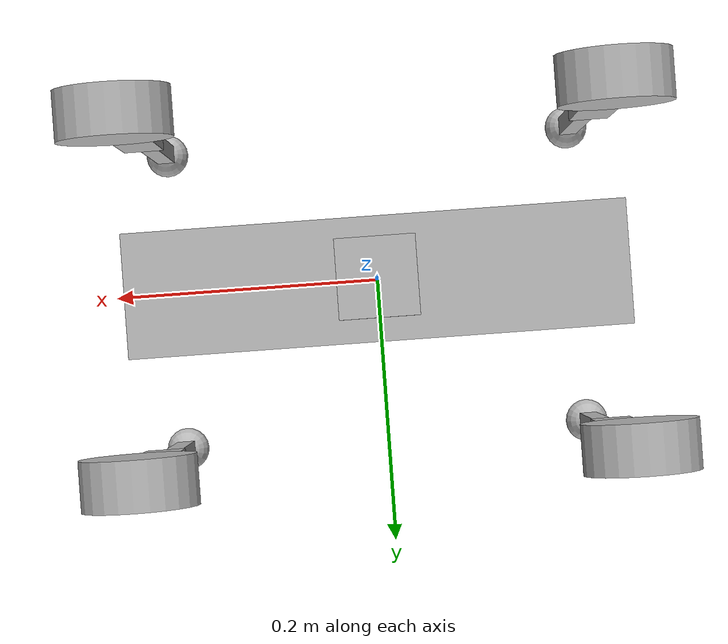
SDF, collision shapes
<sdf version='1.6'>
  <model name='go2'>
    <link name='base'>
      <pose frame=''>0 0 0 0 -0 0</pose>
      <inertial>
        <pose frame=''>0.020317 0 -0.00156 0 -0 0</pose>
        <mass>7.192</mass>
        <inertia>
          <ixx>0.0275133</ixx>
          <ixy>0.00012166</ixy>
          <ixz>0.00204105</ixz>
          <iyy>0.101227</iyy>
          <iyz>-3.12e-05</iyz>
          <izz>0.107378</izz>
        </inertia>
      </inertial>
      <collision name='base_fixed_joint_lump__trunk_collision'>
        <pose frame=''>0 0 0 0 -0 0</pose>
        <geometry>
          <box>
            <size>0.3762 0.0935 0.114</size>
          </box>
        </geometry>
        <surface>
          <contact>
            <ode>
              <kp>1e+06</kp>
              <kd>1</kd>
            </ode>
          </contact>
          <friction>
            <ode>
              <mu>0.2</mu>
              <mu2>0.2</mu2>
            </ode>
          </friction>
        </surface>
      </collision>
      <collision name='base_fixed_joint_lump__hokuyo_frame_collision_1'>
        <pose frame=''>0 0 0.0845 0 -0 0</pose>
        <geometry>
          <box>
            <size>0.058 0.058 0.087</size>
          </box>
        </geometry>
        <surface>
          <contact>
            <ode/>
          </contact>
          <friction>
            <ode/>
          </friction>
        </surface>
      </collision>
      <collision name='base_fixed_joint_lump__imu_link_collision_2'>
        <pose frame=''>0 0 0 0 -0 0</pose>
        <geometry>
          <box>
            <size>0.001 0.001 0.001</size>
          </box>
        </geometry>
        <surface>
          <contact>
            <ode/>
          </contact>
          <friction>
            <ode>
              <mu>0.2</mu>
              <mu2>0.2</mu2>
            </ode>
          </friction>
        </surface>
      </collision>
      <visual name='base_visual'>
        <pose frame=''>0 0 0 0 -0 0</pose>
        <geometry>
          <box>
            <size>0.001 0.001 0.001</size>
          </box>
        </geometry>
        <material>
          <script>
            <uri>__default__</uri>
            <name>__default__</name>
          </script>
        </material>
      </visual>
      <visual name='base_fixed_joint_lump__trunk_visual_1'>
        <pose frame=''>0 0 0 0 -0 0</pose>
        <geometry>
          <mesh>
            <scale>1 1 1</scale>
            <uri>model://go2_description/meshes/trunk.dae</uri>
          </mesh>
        </geometry>
        <material>
          <script>
            <uri>__default__</uri>
            <name>__default__</name>
          </script>
        </material>
      </visual>
      <visual name='base_fixed_joint_lump__hokuyo_frame_visual_2'>
        <pose frame=''>0 0 0.096 0 -0 0</pose>
        <geometry>
          <mesh>
            <scale>1 1 1</scale>
            <uri>model://hector_sensors_description/meshes/hokuyo_utm30lx/hokuyo_utm_30lx.dae</uri>
          </mesh>
        </geometry>
        <material>
          <script>
            <uri>__default__</uri>
            <name>__default__</name>
          </script>
        </material>
      </visual>
      <visual name='base_fixed_joint_lump__imu_link_visual_3'>
        <pose frame=''>0 0 0 0 -0 0</pose>
        <geometry>
          <box>
            <size>0.001 0.001 0.001</size>
          </box>
        </geometry>
        <material>
          <script>
            <uri>__default__</uri>
            <name>__default__</name>
          </script>
        </material>
      </visual>
      <velocity_decay/>
      <velocity_decay/>
      <velocity_decay/>
      <sensor name='hokuyo' type='ray'>
        <always_on>1</always_on>
        <update_rate>30</update_rate>
        <visualize>0</visualize>
        <ray>
          <scan>
            <horizontal>
              <samples>1040</samples>
              <resolution>1</resolution>
              <min_angle>2.26893</min_angle>
              <max_angle>-2.26893</max_angle>
            </horizontal>
          </scan>
          <range>
            <min>0.2</min>
            <max>30</max>
            <resolution>0.01</resolution>
          </range>
          <noise>
            <type>gaussian</type>
            <mean>0</mean>
            <stddev>0.004</stddev>
          </noise>
        </ray>
        <plugin name='gazebo_ros_hokuyo_controller' filename='libgazebo_ros_laser.so'>
          <topicName>scan</topicName>
          <frameName>hokuyo_frame</frameName>
        </plugin>
        <pose frame=''>0 0 0.096 0 -0 0</pose>
      </sensor>
      <velocity_decay/>
      <gravity>1</gravity>
      <sensor name='imu_sensor' type='imu'>
        <always_on>1</always_on>
        <update_rate>1000</update_rate>
        <visualize>1</visualize>
        <topic>__default_topic__</topic>
        <plugin name='imu_plugin' filename='libgazebo_ros_imu_sensor.so'>
          <topicName>trunk_imu</topicName>
          <bodyName>imu_link</bodyName>
          <updateRateHZ>1000.0</updateRateHZ>
          <gaussianNoise>0.0</gaussianNoise>
          <xyzOffset>0 0 0</xyzOffset>
          <rpyOffset>0 0 0</rpyOffset>
          <frameName>imu_link</frameName>
        </plugin>
        <pose frame=''>0 0 0 0 -0 0</pose>
      </sensor>
      <gravity>1</gravity>
      <velocity_decay/>
    </link>
    <link name='FL_hip'>
      <pose frame=''>0.1934 0.0465 0 0 -0 0</pose>
      <inertial>
        <pose frame=''>-0.0054 0.00194 -0.000105 0 -0 0</pose>
        <mass>0.678</mass>
        <inertia>
          <ixx>0.00048</ixx>
          <ixy>-3.01e-06</ixy>
          <ixz>1.11e-06</ixz>
          <iyy>0.000884</iyy>
          <iyz>-1.42e-06</iyz>
          <izz>0.000596</izz>
        </inertia>
      </inertial>
      <collision name='FL_hip_collision'>
        <pose frame=''>0 0.0955 0 1.5708 -0 0</pose>
        <geometry>
          <cylinder>
            <length>0.04</length>
            <radius>0.046</radius>
          </cylinder>
        </geometry>
        <surface>
          <contact>
            <ode/>
          </contact>
          <friction>
            <ode>
              <mu>0.2</mu>
              <mu2>0.2</mu2>
            </ode>
          </friction>
        </surface>
      </collision>
      <visual name='FL_hip_visual'>
        <pose frame=''>0 0 0 0 -0 0</pose>
        <geometry>
          <mesh>
            <scale>1 1 1</scale>
            <uri>model://go2_description/meshes/hip.dae</uri>
          </mesh>
        </geometry>
        <material>
          <script>
            <uri>__default__</uri>
            <name>__default__</name>
          </script>
        </material>
      </visual>
      <gravity>1</gravity>
      <velocity_decay/>
    </link>
    <joint name='FL_hip_joint' type='revolute'>
      <child>FL_hip</child>
      <parent>base</parent>
      <axis>
        <xyz>1 0 0</xyz>
        <limit>
          <lower>-1.0472</lower>
          <upper>1.0472</upper>
          <effort>23.7</effort>
          <velocity>30.1</velocity>
        </limit>
        <dynamics>
          <damping>0.01</damping>
          <friction>0.2</friction>
          <spring_reference>0</spring_reference>
          <spring_stiffness>0</spring_stiffness>
        </dynamics>
        <use_parent_model_frame>1</use_parent_model_frame>
      </axis>
    </joint>
    <link name='FL_thigh'>
      <pose frame=''>0.1934 0.142 0 0 -0 0</pose>
      <inertial>
        <pose frame=''>-0.00374 -0.0223 -0.0327 0 -0 0</pose>
        <mass>1.152</mass>
        <inertia>
          <ixx>0.00584</ixx>
          <ixy>8.72e-05</ixy>
          <ixz>-0.000289</ixz>
          <iyy>0.0058</iyy>
          <iyz>0.000808</iyz>
          <izz>0.00103</izz>
        </inertia>
      </inertial>
      <collision name='FL_thigh_collision'>
        <pose frame=''>0 0 -0.1065 3.14159 1.57079 3.14159</pose>
        <geometry>
          <box>
            <size>0.213 0.0245 0.034</size>
          </box>
        </geometry>
        <surface>
          <contact>
            <ode>
              <kp>1e+06</kp>
              <kd>1</kd>
            </ode>
          </contact>
          <friction>
            <ode>
              <mu>0.2</mu>
              <mu2>0.2</mu2>
            </ode>
          </friction>
        </surface>
      </collision>
      <visual name='FL_thigh_visual'>
        <pose frame=''>0 0 0 0 -0 0</pose>
        <geometry>
          <mesh>
            <scale>1 1 1</scale>
            <uri>model://go2_description/meshes/thigh.dae</uri>
          </mesh>
        </geometry>
        <material>
          <script>
            <uri>__default__</uri>
            <name>__default__</name>
          </script>
        </material>
      </visual>
      <gravity>1</gravity>
      <velocity_decay/>
      <self_collide>1</self_collide>
    </link>
    <joint name='FL_thigh_joint' type='revolute'>
      <child>FL_thigh</child>
      <parent>FL_hip</parent>
      <axis>
        <xyz>0 1 0</xyz>
        <limit>
          <lower>-1.5708</lower>
          <upper>3.4907</upper>
          <effort>23.7</effort>
          <velocity>30.1</velocity>
        </limit>
        <dynamics>
          <damping>0.01</damping>
          <friction>0.2</friction>
          <spring_reference>0</spring_reference>
          <spring_stiffness>0</spring_stiffness>
        </dynamics>
        <use_parent_model_frame>1</use_parent_model_frame>
      </axis>
    </joint>
    <link name='FL_calf'>
      <pose frame=''>0.1934 0.142 -0.213 0 -0 0</pose>
      <inertial>
        <pose frame=''>0.003944 -0.000702 -0.142477 0 -0 0</pose>
        <mass>0.214</mass>
        <inertia>
          <ixx>0.00150432</ixx>
          <ixy>5.70698e-07</ixy>
          <ixz>-5.98808e-06</ixz>
          <iyy>0.00152557</iyy>
          <iyz>1.24056e-05</iyz>
          <izz>4.38377e-05</izz>
        </inertia>
      </inertial>
      <collision name='FL_calf_collision'>
        <pose frame=''>0 0 -0.1065 3.14159 1.57079 3.14159</pose>
        <geometry>
          <box>
            <size>0.213 0.016 0.016</size>
          </box>
        </geometry>
        <surface>
          <contact>
            <ode/>
          </contact>
          <friction>
            <ode>
              <mu>0.2</mu>
              <mu2>0.2</mu2>
            </ode>
          </friction>
        </surface>
      </collision>
      <collision name='FL_calf_fixed_joint_lump__FL_foot_collision_1'>
        <pose frame=''>0 0 -0.213 0 -0 0</pose>
        <geometry>
          <sphere>
            <radius>0.02</radius>
          </sphere>
        </geometry>
        <surface>
          <contact>
            <ode>
              <kp>1e+06</kp>
              <kd>1</kd>
            </ode>
          </contact>
          <friction>
            <ode>
              <mu>0.6</mu>
              <mu2>0.6</mu2>
            </ode>
          </friction>
        </surface>
      </collision>
      <visual name='FL_calf_visual'>
        <pose frame=''>0 0 0 0 -0 0</pose>
        <geometry>
          <mesh>
            <scale>1 1 1</scale>
            <uri>model://go2_description/meshes/calf.dae</uri>
          </mesh>
        </geometry>
        <material>
          <script>
            <uri>__default__</uri>
            <name>__default__</name>
          </script>
        </material>
      </visual>
      <visual name='FL_calf_fixed_joint_lump__FL_foot_visual_1'>
        <pose frame=''>0 0 -0.213 0 -0 0</pose>
        <geometry>
          <sphere>
            <radius>0.01</radius>
          </sphere>
        </geometry>
        <plugin name='drawForcePlugin' filename='libunitreeDrawForcePlugin.so'>
          <topicName>FL_foot_contact</topicName>
        </plugin>
        <material>
          <script>
            <uri>__default__</uri>
            <name>__default__</name>
          </script>
        </material>
      </visual>
      <velocity_decay/>
      <sensor name='FL_foot_contact' type='contact'>
        <update_rate>100</update_rate>
        <plugin name='contactPlugin' filename='libunitreeFootContactPlugin.so'/>
        <contact>
          <collision>FL_calf_fixed_joint_lump__FL_foot_collision_1</collision>
          <topic>__default_topic__</topic>
        </contact>
      </sensor>
      <velocity_decay/>
      <self_collide>1</self_collide>
      <velocity_decay/>
      <gravity>1</gravity>
      <velocity_decay/>
      <self_collide>1</self_collide>
    </link>
    <joint name='FL_calf_joint' type='revolute'>
      <child>FL_calf</child>
      <parent>FL_thigh</parent>
      <axis>
        <xyz>0 1 0</xyz>
        <limit>
          <lower>-2.7227</lower>
          <upper>-0.83776</upper>
          <effort>35.55</effort>
          <velocity>20.06</velocity>
        </limit>
        <dynamics>
          <damping>0.01</damping>
          <friction>0.2</friction>
          <spring_reference>0</spring_reference>
          <spring_stiffness>0</spring_stiffness>
        </dynamics>
        <use_parent_model_frame>1</use_parent_model_frame>
      </axis>
    </joint>
    <link name='FR_hip'>
      <pose frame=''>0.1934 -0.0465 0 0 -0 0</pose>
      <inertial>
        <pose frame=''>-0.0054 -0.00194 -0.000105 0 -0 0</pose>
        <mass>0.678</mass>
        <inertia>
          <ixx>0.00048</ixx>
          <ixy>3.01e-06</ixy>
          <ixz>1.11e-06</ixz>
          <iyy>0.000884</iyy>
          <iyz>1.42e-06</iyz>
          <izz>0.000596</izz>
        </inertia>
      </inertial>
      <collision name='FR_hip_collision'>
        <pose frame=''>0 -0.0955 0 1.5708 -0 0</pose>
        <geometry>
          <cylinder>
            <length>0.04</length>
            <radius>0.046</radius>
          </cylinder>
        </geometry>
        <surface>
          <contact>
            <ode/>
          </contact>
          <friction>
            <ode>
              <mu>0.2</mu>
              <mu2>0.2</mu2>
            </ode>
          </friction>
        </surface>
      </collision>
      <visual name='FR_hip_visual'>
        <pose frame=''>0 0 0 3.14159 -0 0</pose>
        <geometry>
          <mesh>
            <scale>1 1 1</scale>
            <uri>model://go2_description/meshes/hip.dae</uri>
          </mesh>
        </geometry>
        <material>
          <script>
            <uri>__default__</uri>
            <name>__default__</name>
          </script>
        </material>
      </visual>
      <gravity>1</gravity>
      <velocity_decay/>
    </link>
    <joint name='FR_hip_joint' type='revolute'>
      <child>FR_hip</child>
      <parent>base</parent>
      <axis>
        <xyz>1 0 0</xyz>
        <limit>
          <lower>-1.0472</lower>
          <upper>1.0472</upper>
          <effort>23.7</effort>
          <velocity>30.1</velocity>
        </limit>
        <dynamics>
          <damping>0.01</damping>
          <friction>0.2</friction>
          <spring_reference>0</spring_reference>
          <spring_stiffness>0</spring_stiffness>
        </dynamics>
        <use_parent_model_frame>1</use_parent_model_frame>
      </axis>
    </joint>
    <link name='FR_thigh'>
      <pose frame=''>0.1934 -0.142 0 0 -0 0</pose>
      <inertial>
        <pose frame=''>-0.00374 0.0223 -0.0327 0 -0 0</pose>
        <mass>1.152</mass>
        <inertia>
          <ixx>0.00584</ixx>
          <ixy>-8.72e-05</ixy>
          <ixz>-0.000289</ixz>
          <iyy>0.0058</iyy>
          <iyz>-0.000808</iyz>
          <izz>0.00103</izz>
        </inertia>
      </inertial>
      <collision name='FR_thigh_collision'>
        <pose frame=''>0 0 -0.1065 3.14159 1.57079 3.14159</pose>
        <geometry>
          <box>
            <size>0.213 0.0245 0.034</size>
          </box>
        </geometry>
        <surface>
          <contact>
            <ode>
              <kp>1e+06</kp>
              <kd>1</kd>
            </ode>
          </contact>
          <friction>
            <ode>
              <mu>0.2</mu>
              <mu2>0.2</mu2>
            </ode>
          </friction>
        </surface>
      </collision>
      <visual name='FR_thigh_visual'>
        <pose frame=''>0 0 0 0 -0 0</pose>
        <geometry>
          <mesh>
            <scale>1 1 1</scale>
            <uri>model://go2_description/meshes/thigh_mirror.dae</uri>
          </mesh>
        </geometry>
        <material>
          <script>
            <uri>__default__</uri>
            <name>__default__</name>
          </script>
        </material>
      </visual>
      <gravity>1</gravity>
      <velocity_decay/>
      <self_collide>1</self_collide>
    </link>
    <joint name='FR_thigh_joint' type='revolute'>
      <child>FR_thigh</child>
      <parent>FR_hip</parent>
      <axis>
        <xyz>0 1 0</xyz>
        <limit>
          <lower>-1.5708</lower>
          <upper>3.4907</upper>
          <effort>23.7</effort>
          <velocity>30.1</velocity>
        </limit>
        <dynamics>
          <damping>0.01</damping>
          <friction>0.2</friction>
          <spring_reference>0</spring_reference>
          <spring_stiffness>0</spring_stiffness>
        </dynamics>
        <use_parent_model_frame>1</use_parent_model_frame>
      </axis>
    </joint>
    <link name='FR_calf'>
      <pose frame=''>0.1934 -0.142 -0.213 0 -0 0</pose>
      <inertial>
        <pose frame=''>0.003944 -0.000702 -0.142477 0 -0 0</pose>
        <mass>0.214</mass>
        <inertia>
          <ixx>0.00150432</ixx>
          <ixy>5.70698e-07</ixy>
          <ixz>-5.98808e-06</ixz>
          <iyy>0.00152557</iyy>
          <iyz>1.24056e-05</iyz>
          <izz>4.38377e-05</izz>
        </inertia>
      </inertial>
      <collision name='FR_calf_collision'>
        <pose frame=''>0 0 -0.1065 3.14159 1.57079 3.14159</pose>
        <geometry>
          <box>
            <size>0.213 0.016 0.016</size>
          </box>
        </geometry>
        <surface>
          <contact>
            <ode/>
          </contact>
          <friction>
            <ode>
              <mu>0.2</mu>
              <mu2>0.2</mu2>
            </ode>
          </friction>
        </surface>
      </collision>
      <collision name='FR_calf_fixed_joint_lump__FR_foot_collision_1'>
        <pose frame=''>0 0 -0.213 0 -0 0</pose>
        <geometry>
          <sphere>
            <radius>0.02</radius>
          </sphere>
        </geometry>
        <surface>
          <contact>
            <ode>
              <kp>1e+06</kp>
              <kd>1</kd>
            </ode>
          </contact>
          <friction>
            <ode>
              <mu>0.6</mu>
              <mu2>0.6</mu2>
            </ode>
          </friction>
        </surface>
      </collision>
      <visual name='FR_calf_visual'>
        <pose frame=''>0 0 0 0 -0 0</pose>
        <geometry>
          <mesh>
            <scale>1 1 1</scale>
            <uri>model://go2_description/meshes/calf.dae</uri>
          </mesh>
        </geometry>
        <material>
          <script>
            <uri>__default__</uri>
            <name>__default__</name>
          </script>
        </material>
      </visual>
      <visual name='FR_calf_fixed_joint_lump__FR_foot_visual_1'>
        <pose frame=''>0 0 -0.213 0 -0 0</pose>
        <geometry>
          <sphere>
            <radius>0.01</radius>
          </sphere>
        </geometry>
        <plugin name='drawForcePlugin' filename='libunitreeDrawForcePlugin.so'>
          <topicName>FR_foot_contact</topicName>
        </plugin>
        <material>
          <script>
            <uri>__default__</uri>
            <name>__default__</name>
          </script>
        </material>
      </visual>
      <velocity_decay/>
      <sensor name='FR_foot_contact' type='contact'>
        <update_rate>100</update_rate>
        <plugin name='contactPlugin' filename='libunitreeFootContactPlugin.so'/>
        <contact>
          <collision>FR_calf_fixed_joint_lump__FR_foot_collision_1</collision>
          <topic>__default_topic__</topic>
        </contact>
      </sensor>
      <velocity_decay/>
      <self_collide>1</self_collide>
      <velocity_decay/>
      <gravity>1</gravity>
      <velocity_decay/>
      <self_collide>1</self_collide>
    </link>
    <joint name='FR_calf_joint' type='revolute'>
      <child>FR_calf</child>
      <parent>FR_thigh</parent>
      <axis>
        <xyz>0 1 0</xyz>
        <limit>
          <lower>-2.7227</lower>
          <upper>-0.83776</upper>
          <effort>35.55</effort>
          <velocity>20.06</velocity>
        </limit>
        <dynamics>
          <damping>0.01</damping>
          <friction>0.2</friction>
          <spring_reference>0</spring_reference>
          <spring_stiffness>0</spring_stiffness>
        </dynamics>
        <use_parent_model_frame>1</use_parent_model_frame>
      </axis>
    </joint>
    <link name='RL_hip'>
      <pose frame=''>-0.1934 0.0465 0 0 -0 0</pose>
      <inertial>
        <pose frame=''>0.0054 0.00194 -0.000105 0 -0 0</pose>
        <mass>0.678</mass>
        <inertia>
          <ixx>0.00048</ixx>
          <ixy>3.01e-06</ixy>
          <ixz>-1.11e-06</ixz>
          <iyy>0.000884</iyy>
          <iyz>-1.42e-06</iyz>
          <izz>0.000596</izz>
        </inertia>
      </inertial>
      <collision name='RL_hip_collision'>
        <pose frame=''>0 0.0955 0 1.5708 -0 0</pose>
        <geometry>
          <cylinder>
            <length>0.04</length>
            <radius>0.046</radius>
          </cylinder>
        </geometry>
        <surface>
          <contact>
            <ode/>
          </contact>
          <friction>
            <ode>
              <mu>0.2</mu>
              <mu2>0.2</mu2>
            </ode>
          </friction>
        </surface>
      </collision>
      <visual name='RL_hip_visual'>
        <pose frame=''>0 0 0 3.14159 0 3.14159</pose>
        <geometry>
          <mesh>
            <scale>1 1 1</scale>
            <uri>model://go2_description/meshes/hip.dae</uri>
          </mesh>
        </geometry>
        <material>
          <script>
            <uri>__default__</uri>
            <name>__default__</name>
          </script>
        </material>
      </visual>
      <gravity>1</gravity>
      <velocity_decay/>
    </link>
    <joint name='RL_hip_joint' type='revolute'>
      <child>RL_hip</child>
      <parent>base</parent>
      <axis>
        <xyz>1 0 0</xyz>
        <limit>
          <lower>-1.0472</lower>
          <upper>1.0472</upper>
          <effort>23.7</effort>
          <velocity>30.1</velocity>
        </limit>
        <dynamics>
          <damping>0.01</damping>
          <friction>0.2</friction>
          <spring_reference>0</spring_reference>
          <spring_stiffness>0</spring_stiffness>
        </dynamics>
        <use_parent_model_frame>1</use_parent_model_frame>
      </axis>
    </joint>
    <link name='RL_thigh'>
      <pose frame=''>-0.1934 0.142 0 0 -0 0</pose>
      <inertial>
        <pose frame=''>-0.00374 -0.0223 -0.0327 0 -0 0</pose>
        <mass>1.152</mass>
        <inertia>
          <ixx>0.00584</ixx>
          <ixy>8.72e-05</ixy>
          <ixz>-0.000289</ixz>
          <iyy>0.0058</iyy>
          <iyz>0.000808</iyz>
          <izz>0.00103</izz>
        </inertia>
      </inertial>
      <collision name='RL_thigh_collision'>
        <pose frame=''>0 0 -0.1065 3.14159 1.57079 3.14159</pose>
        <geometry>
          <box>
            <size>0.213 0.0245 0.034</size>
          </box>
        </geometry>
        <surface>
          <contact>
            <ode>
              <kp>1e+06</kp>
              <kd>1</kd>
            </ode>
          </contact>
          <friction>
            <ode>
              <mu>0.2</mu>
              <mu2>0.2</mu2>
            </ode>
          </friction>
        </surface>
      </collision>
      <visual name='RL_thigh_visual'>
        <pose frame=''>0 0 0 0 -0 0</pose>
        <geometry>
          <mesh>
            <scale>1 1 1</scale>
            <uri>model://go2_description/meshes/thigh.dae</uri>
          </mesh>
        </geometry>
        <material>
          <script>
            <uri>__default__</uri>
            <name>__default__</name>
          </script>
        </material>
      </visual>
      <gravity>1</gravity>
      <velocity_decay/>
      <self_collide>1</self_collide>
    </link>
    <joint name='RL_thigh_joint' type='revolute'>
      <child>RL_thigh</child>
      <parent>RL_hip</parent>
      <axis>
        <xyz>0 1 0</xyz>
        <limit>
          <lower>-1.5708</lower>
          <upper>3.4907</upper>
          <effort>23.7</effort>
          <velocity>30.1</velocity>
        </limit>
        <dynamics>
          <damping>0.01</damping>
          <friction>0.2</friction>
          <spring_reference>0</spring_reference>
          <spring_stiffness>0</spring_stiffness>
        </dynamics>
        <use_parent_model_frame>1</use_parent_model_frame>
      </axis>
    </joint>
    <link name='RL_calf'>
      <pose frame=''>-0.1934 0.142 -0.213 0 -0 0</pose>
      <inertial>
        <pose frame=''>0.003944 -0.000702 -0.142477 0 -0 0</pose>
        <mass>0.214</mass>
        <inertia>
          <ixx>0.00150432</ixx>
          <ixy>5.70698e-07</ixy>
          <ixz>-5.98808e-06</ixz>
          <iyy>0.00152557</iyy>
          <iyz>1.24056e-05</iyz>
          <izz>4.38377e-05</izz>
        </inertia>
      </inertial>
      <collision name='RL_calf_collision'>
        <pose frame=''>0 0 -0.1065 3.14159 1.57079 3.14159</pose>
        <geometry>
          <box>
            <size>0.213 0.016 0.016</size>
          </box>
        </geometry>
        <surface>
          <contact>
            <ode/>
          </contact>
          <friction>
            <ode>
              <mu>0.2</mu>
              <mu2>0.2</mu2>
            </ode>
          </friction>
        </surface>
      </collision>
      <collision name='RL_calf_fixed_joint_lump__RL_foot_collision_1'>
        <pose frame=''>0 0 -0.213 0 -0 0</pose>
        <geometry>
          <sphere>
            <radius>0.02</radius>
          </sphere>
        </geometry>
        <surface>
          <contact>
            <ode>
              <kp>1e+06</kp>
              <kd>1</kd>
            </ode>
          </contact>
          <friction>
            <ode>
              <mu>0.6</mu>
              <mu2>0.6</mu2>
            </ode>
          </friction>
        </surface>
      </collision>
      <visual name='RL_calf_visual'>
        <pose frame=''>0 0 0 0 -0 0</pose>
        <geometry>
          <mesh>
            <scale>1 1 1</scale>
            <uri>model://go2_description/meshes/calf.dae</uri>
          </mesh>
        </geometry>
        <material>
          <script>
            <uri>__default__</uri>
            <name>__default__</name>
          </script>
        </material>
      </visual>
      <visual name='RL_calf_fixed_joint_lump__RL_foot_visual_1'>
        <pose frame=''>0 0 -0.213 0 -0 0</pose>
        <geometry>
          <sphere>
            <radius>0.01</radius>
          </sphere>
        </geometry>
        <plugin name='drawForcePlugin' filename='libunitreeDrawForcePlugin.so'>
          <topicName>RL_foot_contact</topicName>
        </plugin>
        <material>
          <script>
            <uri>__default__</uri>
            <name>__default__</name>
          </script>
        </material>
      </visual>
      <velocity_decay/>
      <sensor name='RL_foot_contact' type='contact'>
        <update_rate>100</update_rate>
        <plugin name='contactPlugin' filename='libunitreeFootContactPlugin.so'/>
        <contact>
          <collision>RL_calf_fixed_joint_lump__RL_foot_collision_1</collision>
          <topic>__default_topic__</topic>
        </contact>
      </sensor>
      <velocity_decay/>
      <self_collide>1</self_collide>
      <velocity_decay/>
      <gravity>1</gravity>
      <velocity_decay/>
      <self_collide>1</self_collide>
    </link>
    <joint name='RL_calf_joint' type='revolute'>
      <child>RL_calf</child>
      <parent>RL_thigh</parent>
      <axis>
        <xyz>0 1 0</xyz>
        <limit>
          <lower>-2.7227</lower>
          <upper>-0.83776</upper>
          <effort>35.55</effort>
          <velocity>20.06</velocity>
        </limit>
        <dynamics>
          <damping>0.01</damping>
          <friction>0.2</friction>
          <spring_reference>0</spring_reference>
          <spring_stiffness>0</spring_stiffness>
        </dynamics>
        <use_parent_model_frame>1</use_parent_model_frame>
      </axis>
    </joint>
    <link name='RR_hip'>
      <pose frame=''>-0.1934 -0.0465 0 0 -0 0</pose>
      <inertial>
        <pose frame=''>0.0054 -0.00194 -0.000105 0 -0 0</pose>
        <mass>0.678</mass>
        <inertia>
          <ixx>0.00048</ixx>
          <ixy>-3.01e-06</ixy>
          <ixz>-1.11e-06</ixz>
          <iyy>0.000884</iyy>
          <iyz>1.42e-06</iyz>
          <izz>0.000596</izz>
        </inertia>
      </inertial>
      <collision name='RR_hip_collision'>
        <pose frame=''>0 -0.0955 0 1.5708 -0 0</pose>
        <geometry>
          <cylinder>
            <length>0.04</length>
            <radius>0.046</radius>
          </cylinder>
        </geometry>
        <surface>
          <contact>
            <ode/>
          </contact>
          <friction>
            <ode>
              <mu>0.2</mu>
              <mu2>0.2</mu2>
            </ode>
          </friction>
        </surface>
      </collision>
      <visual name='RR_hip_visual'>
        <pose frame=''>0 0 0 -0 0 3.14159</pose>
        <geometry>
          <mesh>
            <scale>1 1 1</scale>
            <uri>model://go2_description/meshes/hip.dae</uri>
          </mesh>
        </geometry>
        <material>
          <script>
            <uri>__default__</uri>
            <name>__default__</name>
          </script>
        </material>
      </visual>
      <gravity>1</gravity>
      <velocity_decay/>
    </link>
    <joint name='RR_hip_joint' type='revolute'>
      <child>RR_hip</child>
      <parent>base</parent>
      <axis>
        <xyz>1 0 0</xyz>
        <limit>
          <lower>-1.0472</lower>
          <upper>1.0472</upper>
          <effort>23.7</effort>
          <velocity>30.1</velocity>
        </limit>
        <dynamics>
          <damping>0.01</damping>
          <friction>0.2</friction>
          <spring_reference>0</spring_reference>
          <spring_stiffness>0</spring_stiffness>
        </dynamics>
        <use_parent_model_frame>1</use_parent_model_frame>
      </axis>
    </joint>
    <link name='RR_thigh'>
      <pose frame=''>-0.1934 -0.142 0 0 -0 0</pose>
      <inertial>
        <pose frame=''>-0.00374 0.0223 -0.0327 0 -0 0</pose>
        <mass>1.152</mass>
        <inertia>
          <ixx>0.00584</ixx>
          <ixy>-8.72e-05</ixy>
          <ixz>-0.000289</ixz>
          <iyy>0.0058</iyy>
          <iyz>-0.000808</iyz>
          <izz>0.00103</izz>
        </inertia>
      </inertial>
      <collision name='RR_thigh_collision'>
        <pose frame=''>0 0 -0.1065 3.14159 1.57079 3.14159</pose>
        <geometry>
          <box>
            <size>0.213 0.0245 0.034</size>
          </box>
        </geometry>
        <surface>
          <contact>
            <ode>
              <kp>1e+06</kp>
              <kd>1</kd>
            </ode>
          </contact>
          <friction>
            <ode>
              <mu>0.2</mu>
              <mu2>0.2</mu2>
            </ode>
          </friction>
        </surface>
      </collision>
      <visual name='RR_thigh_visual'>
        <pose frame=''>0 0 0 0 -0 0</pose>
        <geometry>
          <mesh>
            <scale>1 1 1</scale>
            <uri>model://go2_description/meshes/thigh_mirror.dae</uri>
          </mesh>
        </geometry>
        <material>
          <script>
            <uri>__default__</uri>
            <name>__default__</name>
          </script>
        </material>
      </visual>
      <gravity>1</gravity>
      <velocity_decay/>
      <self_collide>1</self_collide>
    </link>
    <joint name='RR_thigh_joint' type='revolute'>
      <child>RR_thigh</child>
      <parent>RR_hip</parent>
      <axis>
        <xyz>0 1 0</xyz>
        <limit>
          <lower>-1.5708</lower>
          <upper>3.4907</upper>
          <effort>23.7</effort>
          <velocity>30.1</velocity>
        </limit>
        <dynamics>
          <damping>0.01</damping>
          <friction>0.2</friction>
          <spring_reference>0</spring_reference>
          <spring_stiffness>0</spring_stiffness>
        </dynamics>
        <use_parent_model_frame>1</use_parent_model_frame>
      </axis>
    </joint>
    <link name='RR_calf'>
      <pose frame=''>-0.1934 -0.142 -0.213 0 -0 0</pose>
      <inertial>
        <pose frame=''>0.003944 -0.000702 -0.142477 0 -0 0</pose>
        <mass>0.214</mass>
        <inertia>
          <ixx>0.00150432</ixx>
          <ixy>5.70698e-07</ixy>
          <ixz>-5.98808e-06</ixz>
          <iyy>0.00152557</iyy>
          <iyz>1.24056e-05</iyz>
          <izz>4.38377e-05</izz>
        </inertia>
      </inertial>
      <collision name='RR_calf_collision'>
        <pose frame=''>0 0 -0.1065 3.14159 1.57079 3.14159</pose>
        <geometry>
          <box>
            <size>0.213 0.016 0.016</size>
          </box>
        </geometry>
        <surface>
          <contact>
            <ode/>
          </contact>
          <friction>
            <ode>
              <mu>0.2</mu>
              <mu2>0.2</mu2>
            </ode>
          </friction>
        </surface>
      </collision>
      <collision name='RR_calf_fixed_joint_lump__RR_foot_collision_1'>
        <pose frame=''>0 0 -0.213 0 -0 0</pose>
        <geometry>
          <sphere>
            <radius>0.02</radius>
          </sphere>
        </geometry>
        <surface>
          <contact>
            <ode>
              <kp>1e+06</kp>
              <kd>1</kd>
            </ode>
          </contact>
          <friction>
            <ode>
              <mu>0.6</mu>
              <mu2>0.6</mu2>
            </ode>
          </friction>
        </surface>
      </collision>
      <visual name='RR_calf_visual'>
        <pose frame=''>0 0 0 0 -0 0</pose>
        <geometry>
          <mesh>
            <scale>1 1 1</scale>
            <uri>model://go2_description/meshes/calf.dae</uri>
          </mesh>
        </geometry>
        <material>
          <script>
            <uri>__default__</uri>
            <name>__default__</name>
          </script>
        </material>
      </visual>
      <visual name='RR_calf_fixed_joint_lump__RR_foot_visual_1'>
        <pose frame=''>0 0 -0.213 0 -0 0</pose>
        <geometry>
          <sphere>
            <radius>0.01</radius>
          </sphere>
        </geometry>
        <plugin name='drawForcePlugin' filename='libunitreeDrawForcePlugin.so'>
          <topicName>RR_foot_contact</topicName>
        </plugin>
        <material>
          <script>
            <uri>__default__</uri>
            <name>__default__</name>
          </script>
        </material>
      </visual>
      <velocity_decay/>
      <sensor name='RR_foot_contact' type='contact'>
        <update_rate>100</update_rate>
        <plugin name='contactPlugin' filename='libunitreeFootContactPlugin.so'/>
        <contact>
          <collision>RR_calf_fixed_joint_lump__RR_foot_collision_1</collision>
          <topic>__default_topic__</topic>
        </contact>
      </sensor>
      <velocity_decay/>
      <self_collide>1</self_collide>
      <velocity_decay/>
      <gravity>1</gravity>
      <velocity_decay/>
      <self_collide>1</self_collide>
    </link>
    <joint name='RR_calf_joint' type='revolute'>
      <child>RR_calf</child>
      <parent>RR_thigh</parent>
      <axis>
        <xyz>0 1 0</xyz>
        <limit>
          <lower>-2.7227</lower>
          <upper>-0.83776</upper>
          <effort>35.55</effort>
          <velocity>20.06</velocity>
        </limit>
        <dynamics>
          <damping>0.01</damping>
          <friction>0.2</friction>
          <spring_reference>0</spring_reference>
          <spring_stiffness>0</spring_stiffness>
        </dynamics>
        <use_parent_model_frame>1</use_parent_model_frame>
      </axis>
    </joint>
    <plugin name='gazebo_ros_control' filename='libgazebo_ros_control.so'/>
    <static>0</static>
    <plugin name='gazebo_ros_force' filename='libgazebo_ros_force.so'>
      <topicName>/apply_force/trunk</topicName>
      <bodyName>base</bodyName>
      <xyzOffset>0 0 0</xyzOffset>
      <rpyOffset>0 -0 0</rpyOffset>
    </plugin>
  </model>
</sdf>
